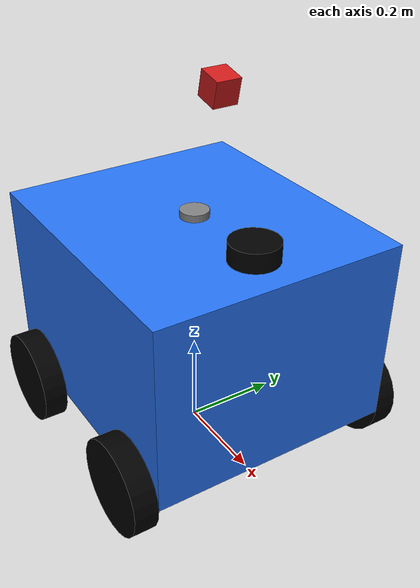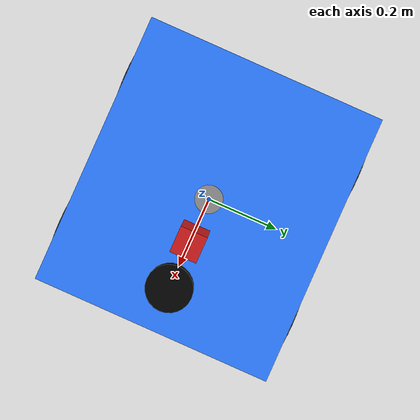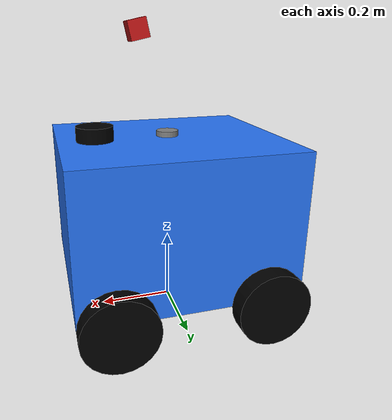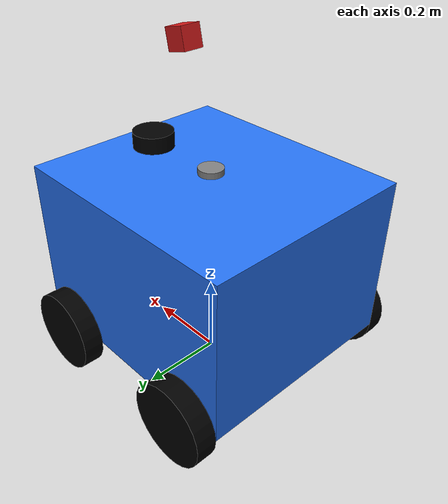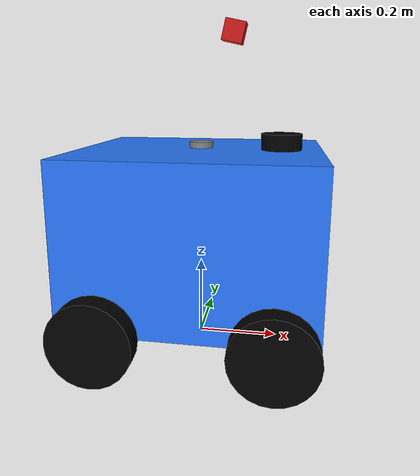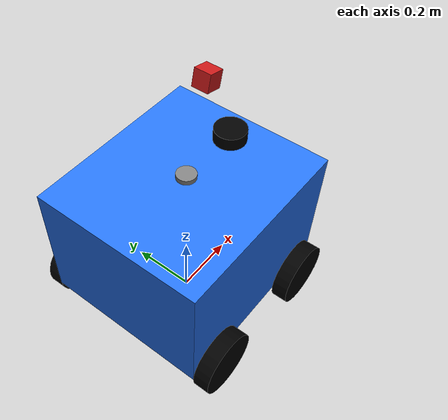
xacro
<?xml version="1.0"?>
<robot name="luanvan_robot" xmlns:xacro="http://www.ros.org/wiki/xacro">

  <!-- Materials -->
  <material name="blue">
    <color rgba="0.15 0.45 0.95 1.0"/>
  </material>
  <material name="black">
    <color rgba="0.0 0.0 0.0 1.0"/>
  </material>
  <material name="red">
    <color rgba="0.8 0.1 0.1 1.0"/>
  </material>
  <material name="grey">
    <color rgba="0.5 0.5 0.5 1.0"/>
  </material>

  <!-- Robot dimensions (Exact real dimensions: 0.6m length x 0.53m width x 0.4m height) -->
  <xacro:property name="chassis_length" value="0.6"/>
  <xacro:property name="chassis_width" value="0.53"/>
  <xacro:property name="chassis_height" value="0.4"/>
  <xacro:property name="wheel_radius" value="0.1"/>
  <xacro:property name="wheel_width" value="0.05"/>
  <xacro:property name="wheel_ygap" value="0.025"/>
  <xacro:property name="wheel_zoff" value="0.2"/>
  <xacro:property name="wheel_xoff" value="0.2"/>

  <!-- Base Footprint -->
  <link name="base_footprint"/>

  <!-- base_link center is at Z = wheel_radius + wheel_zoff = 0.1 + 0.2 = 0.30m -->
  <!-- Ground clearance = 0.30m - chassis_height/2 = 0.30m - 0.20m = 0.10m (10cm clearance) -->
  <joint name="base_footprint_joint" type="fixed">
    <parent link="base_footprint"/>
    <child link="base_link"/>
    <origin xyz="0 0 ${wheel_radius + wheel_zoff}" rpy="0 0 0"/>
  </joint>

  <!-- Chassis Link -->
  <link name="base_link">
    <visual>
      <origin xyz="0 0 0" rpy="0 0 0"/>
      <geometry>
        <box size="${chassis_length} ${chassis_width} ${chassis_height}"/>
      </geometry>
      <material name="blue"/>
    </visual>
    <collision>
      <origin xyz="0 0 0" rpy="0 0 0"/>
      <geometry>
        <box size="${chassis_length} ${chassis_width} ${chassis_height}"/>
      </geometry>
    </collision>
    <inertial>
      <origin xyz="0 0 0" rpy="0 0 0"/>
      <mass value="11.0"/>
      <inertia ixx="0.3808" ixy="0.0" ixz="0.0" iyy="0.4678" iyz="0.0" izz="0.5658"/>
    </inertial>
  </link>

  <!-- Macro for 4 Wheels -->
  <xacro:macro name="wheel" params="prefix x_reflect y_reflect">
    <link name="${prefix}_wheel">
      <visual>
        <origin xyz="0 0 0" rpy="${pi/2} 0 0"/>
        <geometry>
          <cylinder radius="${wheel_radius}" length="${wheel_width}"/>
        </geometry>
        <material name="black"/>
      </visual>
      <collision>
        <origin xyz="0 0 0" rpy="${pi/2} 0 0"/>
        <geometry>
          <cylinder radius="${wheel_radius}" length="${wheel_width}"/>
        </geometry>
      </collision>
      <inertial>
        <origin xyz="0 0 0" rpy="0 0 0"/>
        <mass value="1.0"/>
        <inertia ixx="0.0027" ixy="0.0" ixz="0.0" iyy="0.0027" iyz="0.0" izz="0.005"/>
      </inertial>
    </link>

    <joint name="${prefix}_wheel_joint" type="continuous">
      <parent link="base_link"/>
      <child link="${prefix}_wheel"/>
      <origin xyz="${x_reflect * wheel_xoff} ${y_reflect * (chassis_width/2 + wheel_ygap)} -${wheel_zoff}" rpy="0 0 0"/>
      <axis xyz="0 1 0"/>
    </joint>
  </xacro:macro>

  <!-- Instantiate 4 Wheels -->
  <xacro:wheel prefix="front_left" x_reflect="1" y_reflect="1" />
  <xacro:wheel prefix="front_right" x_reflect="1" y_reflect="-1" />
  <xacro:wheel prefix="rear_left" x_reflect="-1" y_reflect="1" />
  <xacro:wheel prefix="rear_right" x_reflect="-1" y_reflect="-1" />

  <!-- Camera -->
  <link name="camera_link">
    <visual>
      <origin xyz="0 0 0" rpy="0 0 0"/>
      <geometry>
        <box size="0.05 0.05 0.05"/>
      </geometry>
      <material name="red"/>
    </visual>
    <collision>
      <origin xyz="0 0 0" rpy="0 0 0"/>
      <geometry>
        <box size="0.05 0.05 0.05"/>
      </geometry>
    </collision>
    <inertial>
      <mass value="0.2"/>
      <inertia ixx="0.000083" ixy="0.0" ixz="0.0" iyy="0.000083" iyz="0.0" izz="0.000083"/>
    </inertial>
  </link>

  <!-- Mounted on vertical pillar behind LiDAR, looking down at ~12.5 degrees (pitch = 0.22 rad) -->
  <joint name="camera_joint" type="fixed">
    <parent link="base_link"/>
    <child link="camera_link"/>
    <origin xyz="0.08 0 ${chassis_height/2 + 0.28}" rpy="0 0.22 0"/>
  </joint>

  <!-- Camera optical link (for ROS conventions) -->
  <link name="camera_link_optical"/>

  <joint name="camera_optical_joint" type="fixed">
    <parent link="camera_link"/>
    <child link="camera_link_optical"/>
    <origin xyz="0 0 0" rpy="-${pi/2} 0 -${pi/2}"/>
  </joint>

  <!-- Lidar Sensor Link & Joint -->
  <link name="laser_frame">
    <visual>
      <origin xyz="0 0 0" rpy="0 0 0"/>
      <geometry>
        <cylinder radius="0.05" length="0.04"/>
      </geometry>
      <material name="black"/>
    </visual>
    <collision>
      <origin xyz="0 0 0" rpy="0 0 0"/>
      <geometry>
        <cylinder radius="0.05" length="0.04"/>
      </geometry>
    </collision>
    <inertial>
      <mass value="0.1"/>
      <inertia ixx="0.00007" ixy="0" ixz="0" iyy="0.00007" iyz="0" izz="0.000125"/>
    </inertial>
  </link>

  <joint name="laser_joint" type="fixed">
    <parent link="base_link"/>
    <child link="laser_frame"/>
    <!-- Mounted on top of the chassis, at the front (rotated 180 deg so front aligns with robot front) -->
    <origin xyz="0.2 0 ${chassis_height/2 + 0.02}" rpy="0 0 ${pi}"/>
  </joint>

  <!-- IMU Sensor Link & Joint -->
  <link name="imu_link">
    <visual>
      <origin xyz="0 0 0" rpy="0 0 0"/>
      <geometry>
        <box size="0.02 0.02 0.01"/>
      </geometry>
      <material name="red"/>
    </visual>
    <collision>
      <origin xyz="0 0 0" rpy="0 0 0"/>
      <geometry>
        <box size="0.02 0.02 0.01"/>
      </geometry>
    </collision>
    <inertial>
      <mass value="0.05"/>
      <inertia ixx="0.000002" ixy="0" ixz="0" iyy="0.000002" iyz="0" izz="0.000003"/>
    </inertial>
  </link>

  <joint name="imu_joint" type="fixed">
    <parent link="base_link"/>
    <child link="imu_link"/>
    <!-- Mounted at the center of the chassis -->
    <origin xyz="0 0 0" rpy="0 0 0"/>
  </joint>

  <!-- GPS Sensor Link & Joint -->
  <link name="gps_link">
    <visual>
      <origin xyz="0 0 0" rpy="0 0 0"/>
      <geometry>
        <cylinder radius="0.03" length="0.015"/>
      </geometry>
      <material name="grey"/>
    </visual>
    <collision>
      <origin xyz="0 0 0" rpy="0 0 0"/>
      <geometry>
        <cylinder radius="0.03" length="0.015"/>
      </geometry>
    </collision>
    <inertial>
      <mass value="0.05"/>
      <inertia ixx="0.000002" ixy="0" ixz="0" iyy="0.000002" iyz="0" izz="0.000003"/>
    </inertial>
  </link>

  <joint name="gps_joint" type="fixed">
    <parent link="base_link"/>
    <child link="gps_link"/>
    <!-- Mounted on top of chassis -->
    <origin xyz="0 0 ${chassis_height/2 + 0.01}" rpy="0 0 0"/>
  </joint>

  <!-- Gazebo Plugins & Sensor Config -->
  <gazebo reference="base_link">
    <material>Gazebo/Blue</material>
  </gazebo>

  <gazebo reference="front_left_wheel">
    <material>Gazebo/Black</material>
    <collision>
      <surface>
        <friction>
          <ode>
            <mu>0.8</mu>
            <mu2>0.8</mu2>
            <slip1>0.025</slip1>
            <slip2>0.025</slip2>
          </ode>
        </friction>
      </surface>
    </collision>
  </gazebo>

  <gazebo reference="front_right_wheel">
    <material>Gazebo/Black</material>
    <collision>
      <surface>
        <friction>
          <ode>
            <mu>0.8</mu>
            <mu2>0.8</mu2>
            <slip1>0.025</slip1>
            <slip2>0.025</slip2>
          </ode>
        </friction>
      </surface>
    </collision>
  </gazebo>

  <gazebo reference="rear_left_wheel">
    <material>Gazebo/Black</material>
    <collision>
      <surface>
        <friction>
          <ode>
            <mu>0.8</mu>
            <mu2>0.8</mu2>
            <slip1>0.025</slip1>
            <slip2>0.025</slip2>
          </ode>
        </friction>
      </surface>
    </collision>
  </gazebo>

  <gazebo reference="rear_right_wheel">
    <material>Gazebo/Black</material>
    <collision>
      <surface>
        <friction>
          <ode>
            <mu>0.8</mu>
            <mu2>0.8</mu2>
            <slip1>0.025</slip1>
            <slip2>0.025</slip2>
          </ode>
        </friction>
      </surface>
    </collision>
  </gazebo>

  <gazebo reference="camera_link">
    <material>Gazebo/Red</material>
    <sensor name="camera" type="camera">
      <pose> 0 0 0 0 0 0 </pose>
      <always_on>true</always_on>
      <visualize>true</visualize>
      <update_rate>30.0</update_rate>
      <camera>
        <!-- Góc FOV ngang chuẩn 78 độ (1.361 rad) của Webcam DVD20 1080p -->
        <horizontal_fov>1.361</horizontal_fov>
        <image>
          <format>R8G8B8</format>
          <width>1920</width>
          <height>1080</height>
        </image>
        <clip>
          <near>0.05</near>
          <far>15.0</far>
        </clip>
      </camera>
      <topic>/camera/image_raw</topic>
      <gz_frame_id>camera_link_optical</gz_frame_id>
    </sensor>
  </gazebo>

  <gazebo reference="laser_frame">
    <material>Gazebo/Black</material>
    <sensor name="gpu_lidar" type="gpu_lidar">
      <pose>0 0 0 0 0 0</pose>
      <always_on>true</always_on>
      <visualize>true</visualize>
      <update_rate>20.0</update_rate>
      <lidar>
        <scan>
          <horizontal>
            <samples>720</samples>
            <resolution>1</resolution>
            <min_angle>-3.14159265</min_angle>
            <max_angle>3.14159265</max_angle>
          </horizontal>
        </scan>
        <range>
          <min>0.12</min>
          <max>12.0</max>
          <resolution>0.01</resolution>
        </range>
      </lidar>
      <topic>/scan</topic>
      <gz_frame_id>laser_frame</gz_frame_id>
    </sensor>
  </gazebo>

  <gazebo reference="imu_link">
    <material>Gazebo/Red</material>
    <sensor name="imu_sensor" type="imu">
      <pose>0 0 0 0 0 0</pose>
      <always_on>true</always_on>
      <update_rate>50.0</update_rate>
      <visualize>true</visualize>
      <topic>/imu</topic>
      <gz_frame_id>imu_link</gz_frame_id>
    </sensor>
  </gazebo>

  <gazebo reference="gps_link">
    <material>Gazebo/Grey</material>
    <sensor name="navsat_sensor" type="navsat">
      <always_on>true</always_on>
      <update_rate>5.0</update_rate>
      <topic>/gps/fix</topic>
      <gz_frame_id>gps_link</gz_frame_id>
    </sensor>
  </gazebo>

  <gazebo>
    <plugin
      filename="gz-sim-navsat-system"
      name="gz::sim::systems::NavSat">
    </plugin>
  </gazebo>

  <!-- High-Precision Ground-Truth Odometry & TF Publisher (Zero Drift on Turns & Skid-Steer) -->
  <gazebo>
    <plugin
      filename="gz-sim-odometry-publisher-system"
      name="gz::sim::systems::OdometryPublisher">
      <odom_frame>odom</odom_frame>
      <robot_base_frame>base_footprint</robot_base_frame>
      <odom_topic>odom</odom_topic>
      <tf_topic>tf</tf_topic>
      <odom_publish_frequency>50</odom_publish_frequency>
    </plugin>
  </gazebo>

  <!-- 4-Wheel Skid-Steer Drive Plugin for Gazebo Sim (Motor Controller) -->
  <gazebo>
    <plugin
      filename="gz-sim-diff-drive-system"
      name="gz::sim::systems::DiffDrive">
      <left_joint>front_left_wheel_joint</left_joint>
      <left_joint>rear_left_wheel_joint</left_joint>
      <right_joint>front_right_wheel_joint</right_joint>
      <right_joint>rear_right_wheel_joint</right_joint>
      <wheel_separation>0.58</wheel_separation>
      <wheel_radius>${wheel_radius}</wheel_radius>
      <max_wheel_acceleration>15.0</max_wheel_acceleration>
      <max_wheel_torque>100.0</max_wheel_torque>
      <topic>cmd_vel</topic>
      <odom_topic>model/my_robot/diff_odom</odom_topic>
      <tf_topic>model/my_robot/diff_tf</tf_topic>
    </plugin>
  </gazebo>

  <gazebo>
    <plugin
      filename="gz-sim-joint-state-publisher-system"
      name="gz::sim::systems::JointStatePublisher">
      <topic>joint_states</topic>
      <update_rate>50</update_rate>
    </plugin>
  </gazebo>

</robot>
